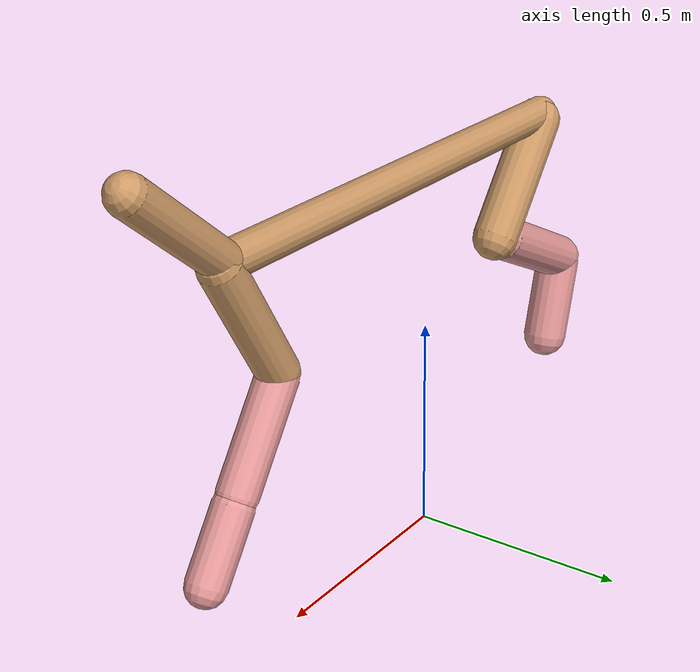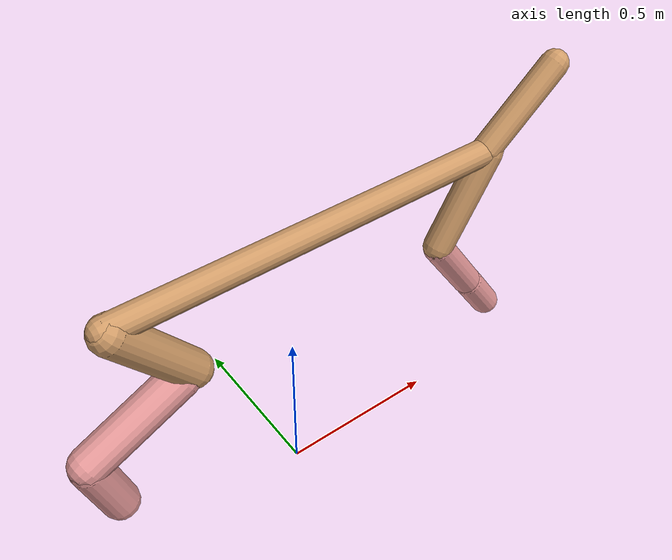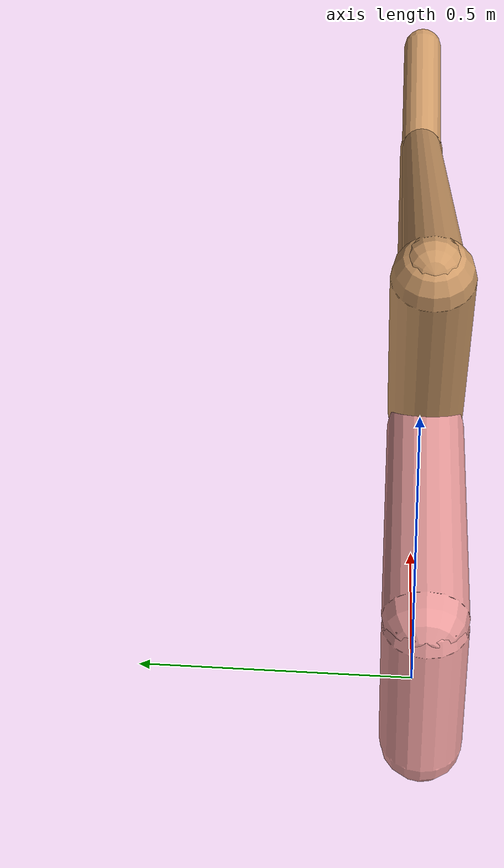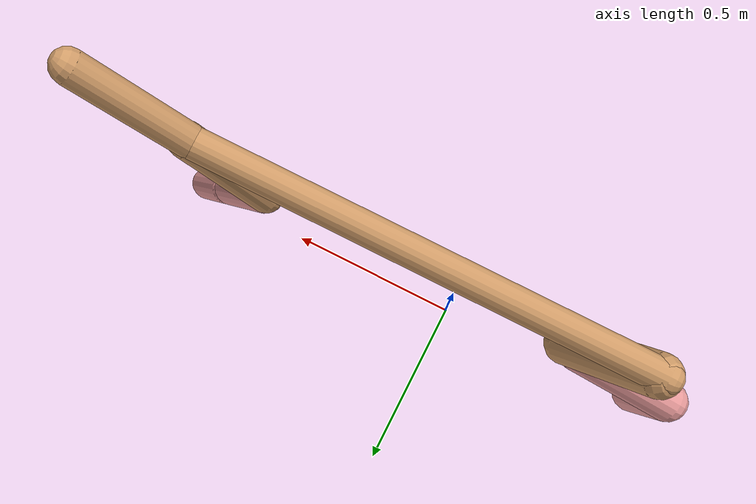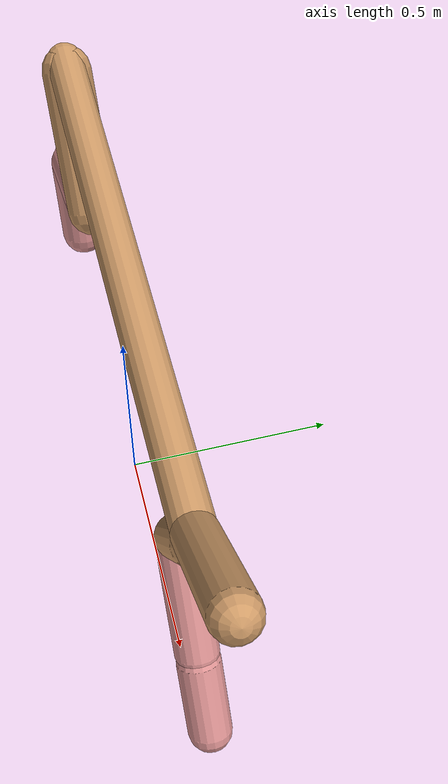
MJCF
<mujoco model="cheetah">
  <compiler angle="radian" coordinate="local" inertiafromgeom="true" settotalmass="14" />
  <default>
    <joint armature=".1" damping=".01" limited="true" solimplimit="0 .8 .03" solreflimit=".02 1" stiffness="8" />
    <geom conaffinity="0" condim="3" contype="1" friction="0.8 .1 .1" rgba="0.8 0.6 .4 1" solimp="0.0 0.8 0.01" solref="0.02 1" />
    <motor ctrllimited="true" ctrlrange="-1 1" />
  </default>
  <size nstack="300000" nuser_geom="1" />
  <option gravity="0 0 -9.81" timestep="0.01" />
  <worldbody>
    <body name="torso" pos="0.0 0.0 0.8749079596673629">
      <joint armature="0" axis="1 0 0" damping="0" limited="false" name="ignorex" pos="0 0 0" stiffness="0" type="slide" />
      <joint armature="0" axis="0 0 1" damping="0" limited="false" name="ignorez" pos="0 0 0" stiffness="0" type="slide" />
      <joint armature="0" axis="0 1 0" damping="0" limited="false" name="ignorey" pos="0 0 0" stiffness="0" type="hinge" />
      <geom fromto="-0.5 0.0 0.0 0.6878868321505447 0.0 0.0" name="torso" size="0.03958540889628588" type="capsule" />
      <geom axisangle="0 1 0 .87" name="head" pos="0.7878868321505447 0.0 0.1" size="0.04150926581382696 0.15" type="capsule" />

      <body name="bthigh" pos="-.5 0 0">
        <joint axis="0 1 0" damping="6" name="bthigh" pos="0 0 0" range="-.52 1.05" stiffness="240" type="hinge" />
        <geom axisangle="0 1 0 -3.8" name="bthigh" pos="0.10532356238306821 0.0 -0.1369206310979887" size="0.05369971284445179 0.15373129149902043" type="capsule" />
        <body name="bshin" pos="0.17064712476613642 0.0 -0.26384126219597737">
          <joint axis="0 1 0" damping="4.5" name="bshin" pos="0 0 0" range="-.785 .785" stiffness="180" type="hinge" />
          <geom axisangle="0 1 0 -2.03" name="bshin" pos="-0.14807879778890035 0.0 -0.07403939889445017" rgba="0.9 0.6 0.6 1" size="0.05369971284445179 0.15903237051622804" type="capsule" />
          <body name="bfoot" pos="-0.2961575955778007 0.0 -0.14807879778890035">
            <joint axis="0 1 0" damping="3" name="bfoot" pos="0 0 0" range="-.4 .785" stiffness="120" type="hinge" />
            <geom axisangle="0 1 0 -.27" name="bfoot" pos="0.03167244299528919 0.0 -0.1024075656847684" rgba="0.9 0.6 0.6 1" size="0.05369971284445179 0.09966028552350291" type="capsule" />
            <inertial mass="10" />
          </body>
        </body>
      </body>
      <body name="fthigh" pos="0.6878868321505447 0.0 0.0">
        <joint axis="0 1 0" damping="4.5" name="fthigh" pos="0 0 0" range="-1.5 0.8" stiffness="180" type="hinge" />
        <geom axisangle="0 1 0 .52" name="fthigh" pos="-0.08226091009447628 0.0 -0.1410187030191022" size="0.04490875248438219 0.15733342953531307" type="capsule" />
        <body name="fshin" pos="-0.16452182018895256 0.0 -0.2820374060382044">
          <joint axis="0 1 0" damping="3" name="fshin" pos="0 0 0" range="-1.2 1.1" stiffness="120" type="hinge" />
          <geom axisangle="0 1 0 -.6" name="fshin" pos="0.07635474640879467 0.0 -0.10572195656602337" rgba="0.9 0.6 0.6 1" size="0.04490875248438219 0.12539356038152769" type="capsule" />
          <body name="ffoot" pos="0.15270949281758933 0.0 -0.21144391313204675">
            <joint axis="0 1 0" damping="1.5" name="ffoot" pos="0 0 0" range="-3.1 -0.3" stiffness="60" type="hinge" />
            <geom axisangle="0 1 0 -.6" name="ffoot" pos="0.05192551933890138 0.0 -0.0807730300827355" rgba="0.9 0.6 0.6 1" size="0.04490875248438219 0.08280706817648056" type="capsule" />
            <inertial mass="10" />
          </body>
        </body>
      </body>
    </body>
  </worldbody>
  <actuator>
    <motor gear="120" joint="bthigh" name="bthigh" />
    <motor gear="90" joint="bshin" name="bshin" />
    <motor gear="60" joint="bfoot" name="bfoot" />
    <motor gear="120" joint="fthigh" name="fthigh" />
    <motor gear="60" joint="fshin" name="fshin" />
    <motor gear="30" joint="ffoot" name="ffoot" />
  </actuator>
</mujoco>
